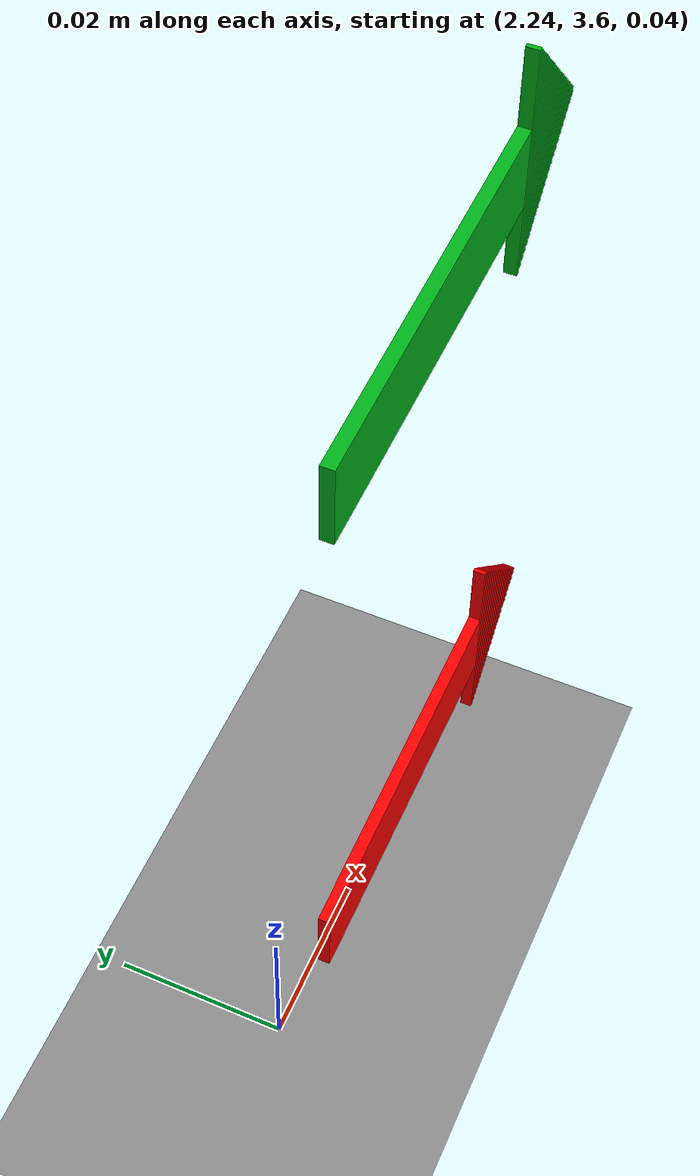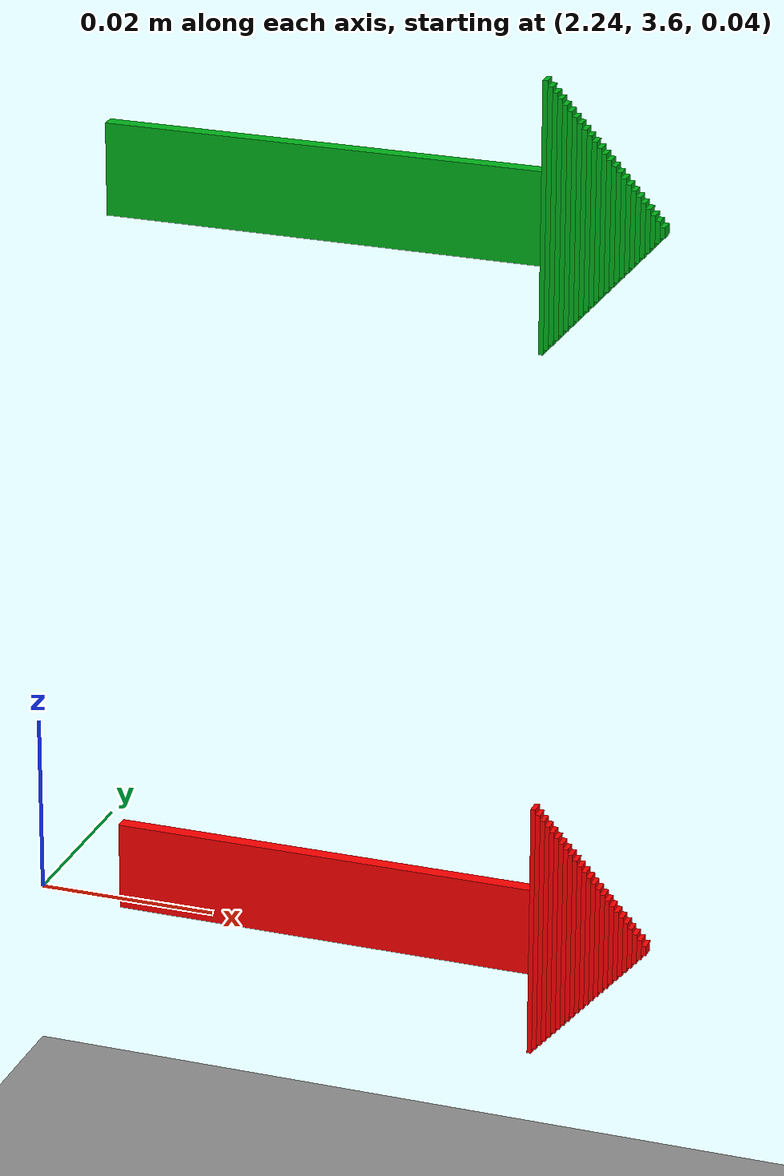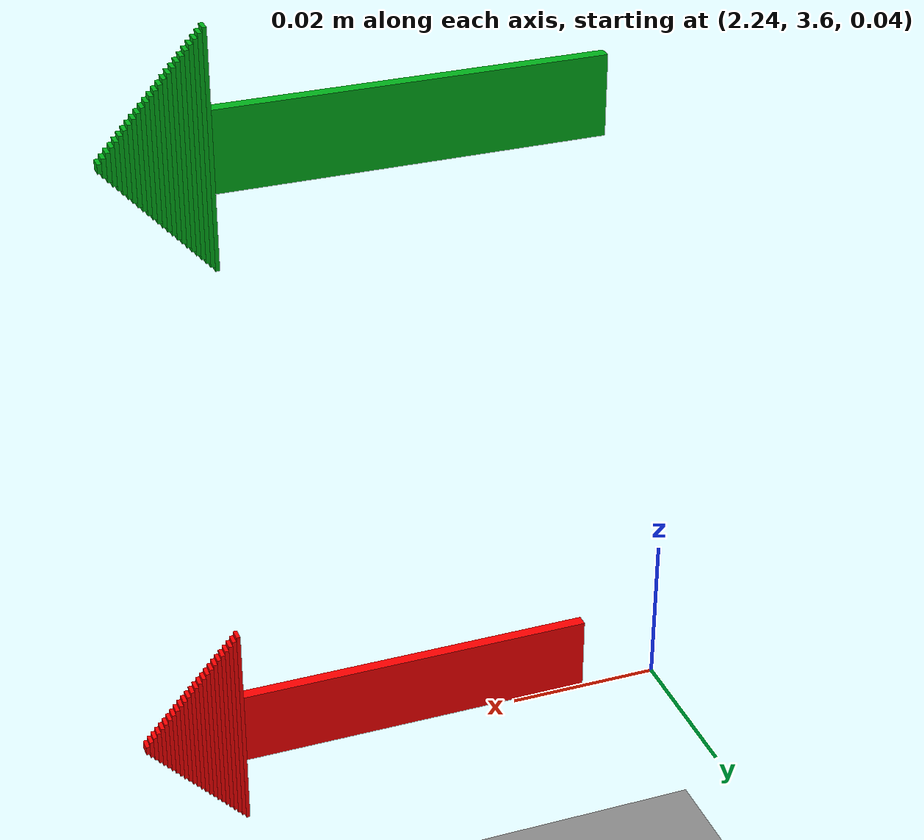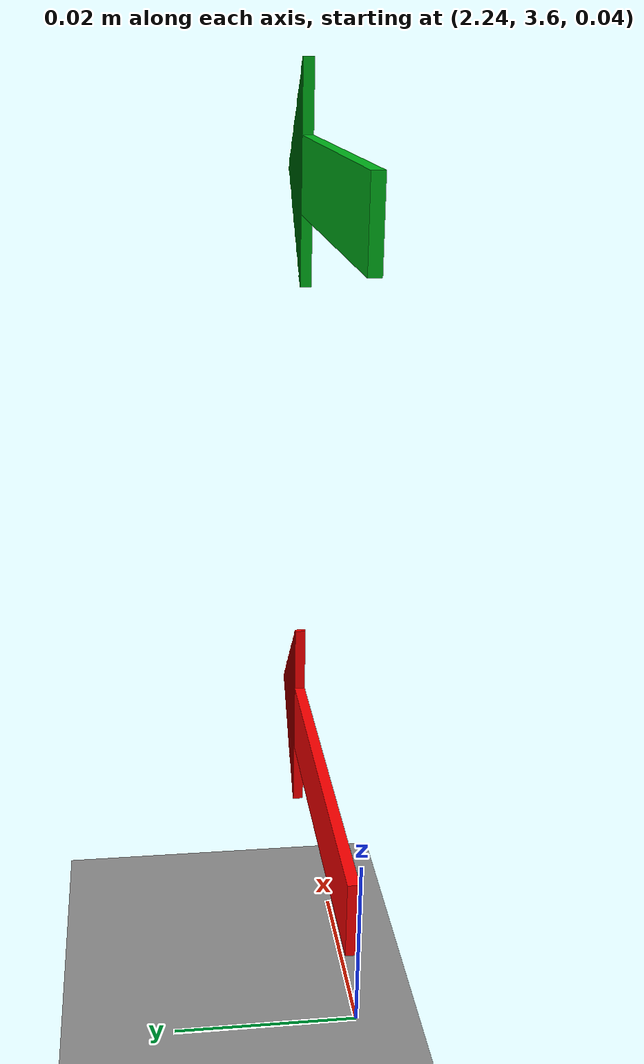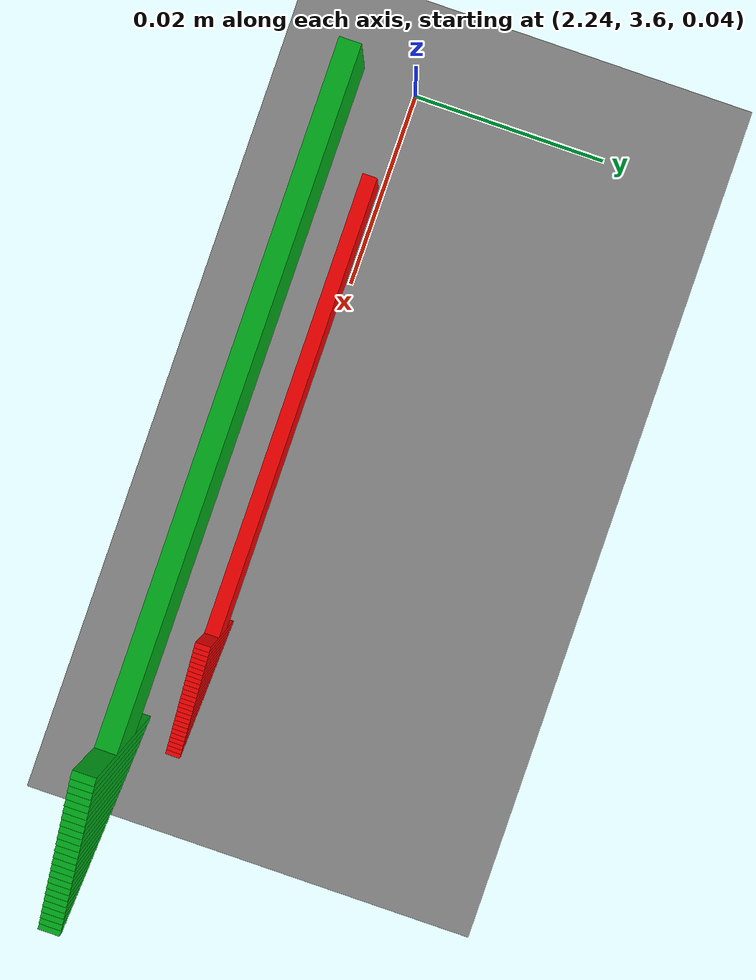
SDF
<sdf version="1.9">
 <world name="ros2_world">
  <model name="ground_plane">
   <static>true</static>
   <link name="link">
    <collision name="collision">
     <geometry><plane><normal>0 0 1</normal><size>30 30</size></plane></geometry>
    </collision>
    <visual name="visual">
     <geometry><plane><normal>0 0 1</normal><size>30 30</size></plane></geometry>
     <material><ambient>0.55 0.55 0.55 1</ambient><diffuse>0.55 0.55 0.55 1</diffuse></material>
    </visual>
   </link>
  </model>
  <model name="flechas">
   <static>true</static>
   <link name="flecha_1">
    <pose>2.28 3.59875 0.125 0 0 0</pose>
    <visual name="p0">
     <pose>-0.0065 0 0 0 0 0</pose>
     <geometry><box><size>0.047 0.0015 0.01</size></box></geometry>
     <material><ambient>0 0.7 0.1 1</ambient><diffuse>0 0.7 0.1 1</diffuse></material>
    </visual>
    <visual name="p1">
     <pose>0.01726 0 0 0 0 0</pose>
     <geometry><box><size>0.00052 0.0015 0.029</size></box></geometry>
     <material><ambient>0 0.7 0.1 1</ambient><diffuse>0 0.7 0.1 1</diffuse></material>
    </visual>
    <visual name="p2">
     <pose>0.01778 0 0 0 0 0</pose>
     <geometry><box><size>0.00052 0.0015 0.02784</size></box></geometry>
     <material><ambient>0 0.7 0.1 1</ambient><diffuse>0 0.7 0.1 1</diffuse></material>
    </visual>
    <visual name="p3">
     <pose>0.0183 0 0 0 0 0</pose>
     <geometry><box><size>0.00052 0.0015 0.02668</size></box></geometry>
     <material><ambient>0 0.7 0.1 1</ambient><diffuse>0 0.7 0.1 1</diffuse></material>
    </visual>
    <visual name="p4">
     <pose>0.01882 0 0 0 0 0</pose>
     <geometry><box><size>0.00052 0.0015 0.02552</size></box></geometry>
     <material><ambient>0 0.7 0.1 1</ambient><diffuse>0 0.7 0.1 1</diffuse></material>
    </visual>
    <visual name="p5">
     <pose>0.01934 0 0 0 0 0</pose>
     <geometry><box><size>0.00052 0.0015 0.02436</size></box></geometry>
     <material><ambient>0 0.7 0.1 1</ambient><diffuse>0 0.7 0.1 1</diffuse></material>
    </visual>
    <visual name="p6">
     <pose>0.01986 0 0 0 0 0</pose>
     <geometry><box><size>0.00052 0.0015 0.0232</size></box></geometry>
     <material><ambient>0 0.7 0.1 1</ambient><diffuse>0 0.7 0.1 1</diffuse></material>
    </visual>
    <visual name="p7">
     <pose>0.02038 0 0 0 0 0</pose>
     <geometry><box><size>0.00052 0.0015 0.02204</size></box></geometry>
     <material><ambient>0 0.7 0.1 1</ambient><diffuse>0 0.7 0.1 1</diffuse></material>
    </visual>
    <visual name="p8">
     <pose>0.0209 0 0 0 0 0</pose>
     <geometry><box><size>0.00052 0.0015 0.02088</size></box></geometry>
     <material><ambient>0 0.7 0.1 1</ambient><diffuse>0 0.7 0.1 1</diffuse></material>
    </visual>
    <visual name="p9">
     <pose>0.02142 0 0 0 0 0</pose>
     <geometry><box><size>0.00052 0.0015 0.01972</size></box></geometry>
     <material><ambient>0 0.7 0.1 1</ambient><diffuse>0 0.7 0.1 1</diffuse></material>
    </visual>
    <visual name="p10">
     <pose>0.02194 0 0 0 0 0</pose>
     <geometry><box><size>0.00052 0.0015 0.01856</size></box></geometry>
     <material><ambient>0 0.7 0.1 1</ambient><diffuse>0 0.7 0.1 1</diffuse></material>
    </visual>
    <visual name="p11">
     <pose>0.02246 0 0 0 0 0</pose>
     <geometry><box><size>0.00052 0.0015 0.0174</size></box></geometry>
     <material><ambient>0 0.7 0.1 1</ambient><diffuse>0 0.7 0.1 1</diffuse></material>
    </visual>
    <visual name="p12">
     <pose>0.02298 0 0 0 0 0</pose>
     <geometry><box><size>0.00052 0.0015 0.01624</size></box></geometry>
     <material><ambient>0 0.7 0.1 1</ambient><diffuse>0 0.7 0.1 1</diffuse></material>
    </visual>
    <visual name="p13">
     <pose>0.0235 0 0 0 0 0</pose>
     <geometry><box><size>0.00052 0.0015 0.01508</size></box></geometry>
     <material><ambient>0 0.7 0.1 1</ambient><diffuse>0 0.7 0.1 1</diffuse></material>
    </visual>
    <visual name="p14">
     <pose>0.02402 0 0 0 0 0</pose>
     <geometry><box><size>0.00052 0.0015 0.01392</size></box></geometry>
     <material><ambient>0 0.7 0.1 1</ambient><diffuse>0 0.7 0.1 1</diffuse></material>
    </visual>
    <visual name="p15">
     <pose>0.02454 0 0 0 0 0</pose>
     <geometry><box><size>0.00052 0.0015 0.01276</size></box></geometry>
     <material><ambient>0 0.7 0.1 1</ambient><diffuse>0 0.7 0.1 1</diffuse></material>
    </visual>
    <visual name="p16">
     <pose>0.02506 0 0 0 0 0</pose>
     <geometry><box><size>0.00052 0.0015 0.0116</size></box></geometry>
     <material><ambient>0 0.7 0.1 1</ambient><diffuse>0 0.7 0.1 1</diffuse></material>
    </visual>
    <visual name="p17">
     <pose>0.02558 0 0 0 0 0</pose>
     <geometry><box><size>0.00052 0.0015 0.01044</size></box></geometry>
     <material><ambient>0 0.7 0.1 1</ambient><diffuse>0 0.7 0.1 1</diffuse></material>
    </visual>
    <visual name="p18">
     <pose>0.0261 0 0 0 0 0</pose>
     <geometry><box><size>0.00052 0.0015 0.00928</size></box></geometry>
     <material><ambient>0 0.7 0.1 1</ambient><diffuse>0 0.7 0.1 1</diffuse></material>
    </visual>
    <visual name="p19">
     <pose>0.02662 0 0 0 0 0</pose>
     <geometry><box><size>0.00052 0.0015 0.00812</size></box></geometry>
     <material><ambient>0 0.7 0.1 1</ambient><diffuse>0 0.7 0.1 1</diffuse></material>
    </visual>
    <visual name="p20">
     <pose>0.02714 0 0 0 0 0</pose>
     <geometry><box><size>0.00052 0.0015 0.00696</size></box></geometry>
     <material><ambient>0 0.7 0.1 1</ambient><diffuse>0 0.7 0.1 1</diffuse></material>
    </visual>
    <visual name="p21">
     <pose>0.02766 0 0 0 0 0</pose>
     <geometry><box><size>0.00052 0.0015 0.0058</size></box></geometry>
     <material><ambient>0 0.7 0.1 1</ambient><diffuse>0 0.7 0.1 1</diffuse></material>
    </visual>
    <visual name="p22">
     <pose>0.02818 0 0 0 0 0</pose>
     <geometry><box><size>0.00052 0.0015 0.00464</size></box></geometry>
     <material><ambient>0 0.7 0.1 1</ambient><diffuse>0 0.7 0.1 1</diffuse></material>
    </visual>
    <visual name="p23">
     <pose>0.0287 0 0 0 0 0</pose>
     <geometry><box><size>0.00052 0.0015 0.00348</size></box></geometry>
     <material><ambient>0 0.7 0.1 1</ambient><diffuse>0 0.7 0.1 1</diffuse></material>
    </visual>
    <visual name="p24">
     <pose>0.02922 0 0 0 0 0</pose>
     <geometry><box><size>0.00052 0.0015 0.00232</size></box></geometry>
     <material><ambient>0 0.7 0.1 1</ambient><diffuse>0 0.7 0.1 1</diffuse></material>
    </visual>
    <visual name="p25">
     <pose>0.02974 0 0 0 0 0</pose>
     <geometry><box><size>0.00052 0.0015 0.00116</size></box></geometry>
     <material><ambient>0 0.7 0.1 1</ambient><diffuse>0 0.7 0.1 1</diffuse></material>
    </visual>
   </link>
   <link name="flecha_2">
    <pose>2.28 3.59875 0.045 0 0 0</pose>
    <visual name="p0">
     <pose>-0.0065 0 0 0 0 0</pose>
     <geometry><box><size>0.047 0.0015 0.01</size></box></geometry>
     <material><ambient>1 0 0 1</ambient><diffuse>1 0 0 1</diffuse></material>
    </visual>
    <visual name="p1">
     <pose>0.01726 0 0 0 0 0</pose>
     <geometry><box><size>0.00052 0.0015 0.029</size></box></geometry>
     <material><ambient>1 0 0 1</ambient><diffuse>1 0 0 1</diffuse></material>
    </visual>
    <visual name="p2">
     <pose>0.01778 0 0 0 0 0</pose>
     <geometry><box><size>0.00052 0.0015 0.02784</size></box></geometry>
     <material><ambient>1 0 0 1</ambient><diffuse>1 0 0 1</diffuse></material>
    </visual>
    <visual name="p3">
     <pose>0.0183 0 0 0 0 0</pose>
     <geometry><box><size>0.00052 0.0015 0.02668</size></box></geometry>
     <material><ambient>1 0 0 1</ambient><diffuse>1 0 0 1</diffuse></material>
    </visual>
    <visual name="p4">
     <pose>0.01882 0 0 0 0 0</pose>
     <geometry><box><size>0.00052 0.0015 0.02552</size></box></geometry>
     <material><ambient>1 0 0 1</ambient><diffuse>1 0 0 1</diffuse></material>
    </visual>
    <visual name="p5">
     <pose>0.01934 0 0 0 0 0</pose>
     <geometry><box><size>0.00052 0.0015 0.02436</size></box></geometry>
     <material><ambient>1 0 0 1</ambient><diffuse>1 0 0 1</diffuse></material>
    </visual>
    <visual name="p6">
     <pose>0.01986 0 0 0 0 0</pose>
     <geometry><box><size>0.00052 0.0015 0.0232</size></box></geometry>
     <material><ambient>1 0 0 1</ambient><diffuse>1 0 0 1</diffuse></material>
    </visual>
    <visual name="p7">
     <pose>0.02038 0 0 0 0 0</pose>
     <geometry><box><size>0.00052 0.0015 0.02204</size></box></geometry>
     <material><ambient>1 0 0 1</ambient><diffuse>1 0 0 1</diffuse></material>
    </visual>
    <visual name="p8">
     <pose>0.0209 0 0 0 0 0</pose>
     <geometry><box><size>0.00052 0.0015 0.02088</size></box></geometry>
     <material><ambient>1 0 0 1</ambient><diffuse>1 0 0 1</diffuse></material>
    </visual>
    <visual name="p9">
     <pose>0.02142 0 0 0 0 0</pose>
     <geometry><box><size>0.00052 0.0015 0.01972</size></box></geometry>
     <material><ambient>1 0 0 1</ambient><diffuse>1 0 0 1</diffuse></material>
    </visual>
    <visual name="p10">
     <pose>0.02194 0 0 0 0 0</pose>
     <geometry><box><size>0.00052 0.0015 0.01856</size></box></geometry>
     <material><ambient>1 0 0 1</ambient><diffuse>1 0 0 1</diffuse></material>
    </visual>
    <visual name="p11">
     <pose>0.02246 0 0 0 0 0</pose>
     <geometry><box><size>0.00052 0.0015 0.0174</size></box></geometry>
     <material><ambient>1 0 0 1</ambient><diffuse>1 0 0 1</diffuse></material>
    </visual>
    <visual name="p12">
     <pose>0.02298 0 0 0 0 0</pose>
     <geometry><box><size>0.00052 0.0015 0.01624</size></box></geometry>
     <material><ambient>1 0 0 1</ambient><diffuse>1 0 0 1</diffuse></material>
    </visual>
    <visual name="p13">
     <pose>0.0235 0 0 0 0 0</pose>
     <geometry><box><size>0.00052 0.0015 0.01508</size></box></geometry>
     <material><ambient>1 0 0 1</ambient><diffuse>1 0 0 1</diffuse></material>
    </visual>
    <visual name="p14">
     <pose>0.02402 0 0 0 0 0</pose>
     <geometry><box><size>0.00052 0.0015 0.01392</size></box></geometry>
     <material><ambient>1 0 0 1</ambient><diffuse>1 0 0 1</diffuse></material>
    </visual>
    <visual name="p15">
     <pose>0.02454 0 0 0 0 0</pose>
     <geometry><box><size>0.00052 0.0015 0.01276</size></box></geometry>
     <material><ambient>1 0 0 1</ambient><diffuse>1 0 0 1</diffuse></material>
    </visual>
    <visual name="p16">
     <pose>0.02506 0 0 0 0 0</pose>
     <geometry><box><size>0.00052 0.0015 0.0116</size></box></geometry>
     <material><ambient>1 0 0 1</ambient><diffuse>1 0 0 1</diffuse></material>
    </visual>
    <visual name="p17">
     <pose>0.02558 0 0 0 0 0</pose>
     <geometry><box><size>0.00052 0.0015 0.01044</size></box></geometry>
     <material><ambient>1 0 0 1</ambient><diffuse>1 0 0 1</diffuse></material>
    </visual>
    <visual name="p18">
     <pose>0.0261 0 0 0 0 0</pose>
     <geometry><box><size>0.00052 0.0015 0.00928</size></box></geometry>
     <material><ambient>1 0 0 1</ambient><diffuse>1 0 0 1</diffuse></material>
    </visual>
    <visual name="p19">
     <pose>0.02662 0 0 0 0 0</pose>
     <geometry><box><size>0.00052 0.0015 0.00812</size></box></geometry>
     <material><ambient>1 0 0 1</ambient><diffuse>1 0 0 1</diffuse></material>
    </visual>
    <visual name="p20">
     <pose>0.02714 0 0 0 0 0</pose>
     <geometry><box><size>0.00052 0.0015 0.00696</size></box></geometry>
     <material><ambient>1 0 0 1</ambient><diffuse>1 0 0 1</diffuse></material>
    </visual>
    <visual name="p21">
     <pose>0.02766 0 0 0 0 0</pose>
     <geometry><box><size>0.00052 0.0015 0.0058</size></box></geometry>
     <material><ambient>1 0 0 1</ambient><diffuse>1 0 0 1</diffuse></material>
    </visual>
    <visual name="p22">
     <pose>0.02818 0 0 0 0 0</pose>
     <geometry><box><size>0.00052 0.0015 0.00464</size></box></geometry>
     <material><ambient>1 0 0 1</ambient><diffuse>1 0 0 1</diffuse></material>
    </visual>
    <visual name="p23">
     <pose>0.0287 0 0 0 0 0</pose>
     <geometry><box><size>0.00052 0.0015 0.00348</size></box></geometry>
     <material><ambient>1 0 0 1</ambient><diffuse>1 0 0 1</diffuse></material>
    </visual>
    <visual name="p24">
     <pose>0.02922 0 0 0 0 0</pose>
     <geometry><box><size>0.00052 0.0015 0.00232</size></box></geometry>
     <material><ambient>1 0 0 1</ambient><diffuse>1 0 0 1</diffuse></material>
    </visual>
    <visual name="p25">
     <pose>0.02974 0 0 0 0 0</pose>
     <geometry><box><size>0.00052 0.0015 0.00116</size></box></geometry>
     <material><ambient>1 0 0 1</ambient><diffuse>1 0 0 1</diffuse></material>
    </visual>
   </link>
  </model>
 </world>
</sdf>
